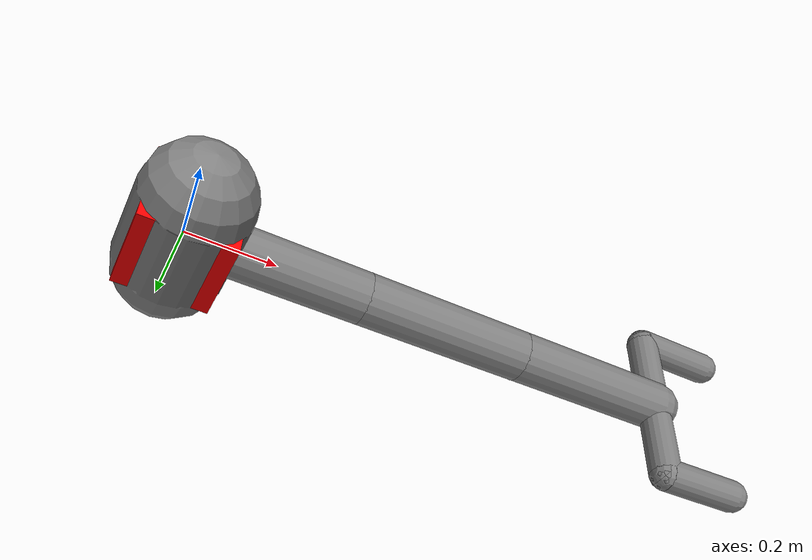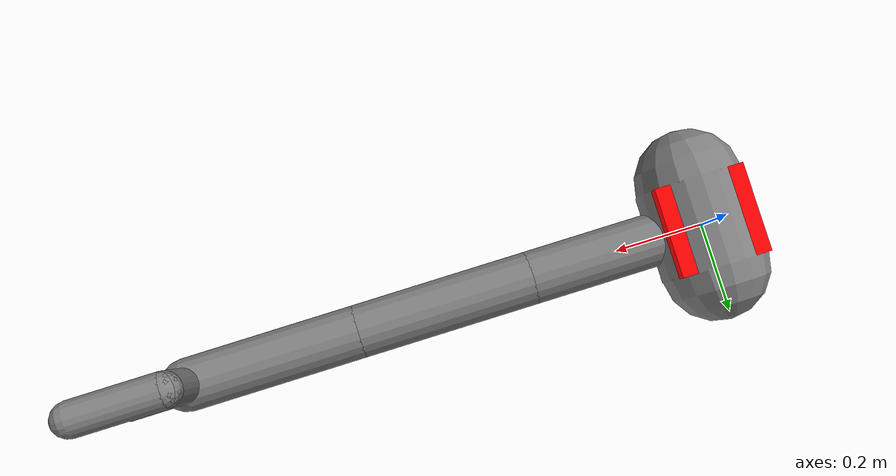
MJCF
<mujoco model="arm3d">
    <compiler inertiafromgeom="true" angle="radian" coordinate="local" />
    <option timestep="0.01" gravity="0 0 0" iterations="20" integrator="RK4" />
    <default>
        <joint armature="0.04" damping="0.5" limited="true" />
        <geom friction=".8 .1 .1" density="300" margin="0.002" condim="1" contype="1" conaffinity="1" />
    </default>

    <worldbody>
        <body name="palm" pos="0 0 0">
            <geom type="capsule" fromto="0 -0.1 0 0 0.1 0" size="0.12" />
            <body name="proximal_1" pos="0 0 0">
                <joint name="proximal_j_1" type="hinge" pos="0 0 0" axis="0 1 0" limited="false" />
                <geom type="capsule"  fromto="0 0 0 0.4 0 0" size="0.06" contype="1" conaffinity="1" />
                <body name="distal_1" pos="0.4 0 0">
                    <joint name="distal_j_1" type="hinge" pos="0 0 0" axis="0 1 0" range="-2.3213 2.3" />
                    <geom type="capsule"  fromto="0 0 0 0.4 0 0" size="0.06" contype="1" conaffinity="1" />
                    <body name="distal_2" pos="0.4 0 0">
                        <joint name="distal_j_2" type="hinge" pos="0 0 0" axis="0 1 0" range="-2.3213 2.3" />
                        <geom type="capsule" fromto="0 0 0 0.4 0 0" size="0.06" contype="1" conaffinity="1" />
                        <body name="distal_4" pos="0.4 0 0">
                            <site name="tip arml" pos="0.1 0 -0.2" size="0.01" />
                            <site name="tip armr" pos="0.1 0 0.2" size="0.01" />
                            <joint name="distal_j_3" type="hinge" pos="0 0 0" axis="1 0 0" range="-3.3213 3.3" />
                            <geom type="capsule" fromto="0 0 -0.2 0 0 0.2" size="0.04" contype="1" conaffinity="1" />
                            <geom type="capsule" fromto="0 0 -0.2 0.2 0 -0.2" size="0.04" contype="1" conaffinity="1" />
                            <geom type="capsule" fromto="0 0 0.2 0.2 0 0.2" size="0.04" contype="1" conaffinity="1" />
                        </body>
                    </body>
                </body>
            </body>
        </body>
        <body name="object" pos="0.0 0.0 0.0">
            <geom rgba="1. 1. 1. 1" type="box" size="0.05 0.05 0.05" density='0.00001' contype="1" conaffinity="1" />
            <joint name="obj_slidez" type="slide" pos="0 0.025 0.0" axis="0 0 1" range="-10.3213 10.3" damping="0.07" />
            <joint name="obj_slidex" type="slide" pos="0.0 0.0 0.0" axis="1 0 0" range="-10.3213 10.3" damping="0.07" />
        </body>

        <body name="goal" pos="0 0 0">
            <geom rgba="1. 0. 0. 1" type="box" size="0.1 0.1 0.1" density='0.00001' contype="0" conaffinity="0" />
            <joint name="goal_slidez" type="slide" pos="0.0 0.0 0.0" axis="0 0 1" range="-10.3213 10.3" limited="true" stiffness="0" ref=".1" damping="0.0" />
            <joint name="goal_slidex" type="slide" pos="0.0 0.0 0.0" axis="1 0 0" range="-10.3213 10.3" limited="true" stiffness="0" ref="-.1" damping="0.0" />
        </body>
    </worldbody>

    <actuator>
        <motor joint="proximal_j_1" ctrlrange="-2 2" ctrllimited="true" />
        <motor joint="distal_j_1" ctrlrange="-2 2" ctrllimited="true" />
        <motor joint="distal_j_2" ctrlrange="-2 2" ctrllimited="true" />
        <motor joint="distal_j_3" ctrlrange="-2 2" ctrllimited="true" />
    </actuator>

</mujoco>
